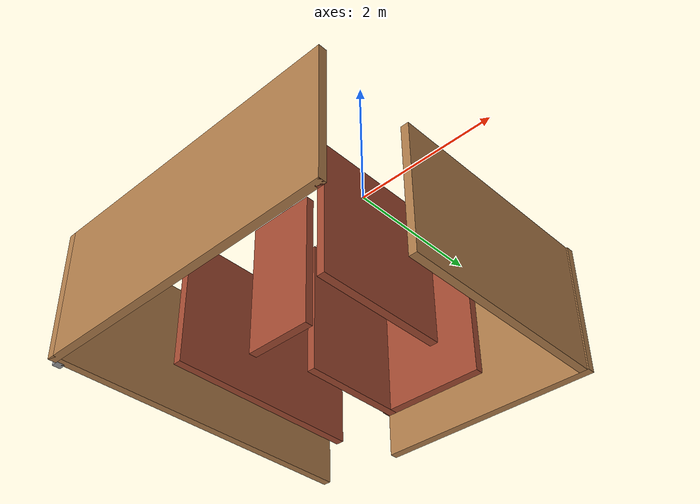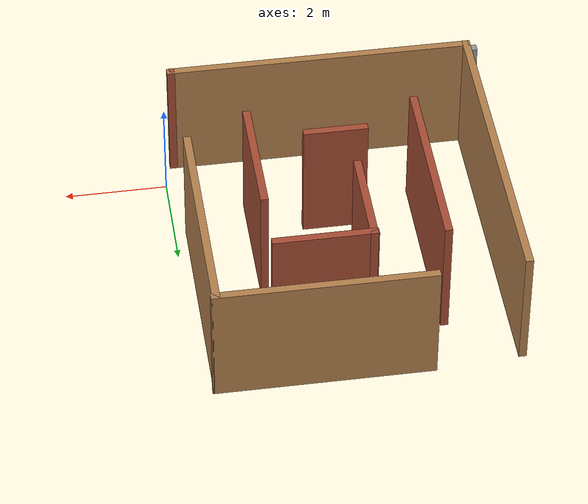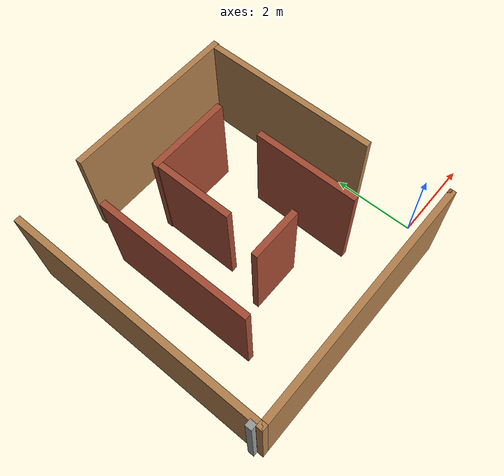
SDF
<?xml version='1.0'?>
<sdf version='1.7'>
  <model name='small_maze'>
    <pose>-3.12289 2.51035 0 0 -0 0</pose>
    <link name='Wall_23'>
      <collision name='Wall_23_Collision'>
        <geometry>
          <box>
            <size>0.15 0.15 2.5</size>
          </box>
        </geometry>
        <pose>0 0 1.25 0 -0 0</pose>
      </collision>
      <visual name='Wall_23_Visual'>
        <pose>0 0 1.25 0 -0 0</pose>
        <geometry>
          <box>
            <size>0.15 0.15 2.5</size>
          </box>
        </geometry>
        <material>
          <script>
            <uri>file://media/materials/scripts/gazebo.material</uri>
            <name>Gazebo/Grey</name>
          </script>
          <ambient>1 1 1 1</ambient>
        </material>
        <meta>
          <layer>0</layer>
        </meta>
      </visual>
      <pose>-3.04789 -2.9604 0 0 -0 0</pose>
    </link>
    <link name='Wall_30'>
      <collision name='Wall_30_Collision'>
        <geometry>
          <box>
            <size>0.15 0.15 2.5</size>
          </box>
        </geometry>
        <pose>0 0 1.25 0 -0 0</pose>
      </collision>
      <visual name='Wall_30_Visual'>
        <pose>0 0 1.25 0 -0 0</pose>
        <geometry>
          <box>
            <size>0.15 0.15 2.5</size>
          </box>
        </geometry>
        <material>
          <script>
            <uri>file://media/materials/scripts/gazebo.material</uri>
            <name>Gazebo/Bricks</name>
          </script>
          <ambient>1 1 1 1</ambient>
        </material>
        <meta>
          <layer>0</layer>
        </meta>
      </visual>
      <pose>2.90661 -3.11322 0 0 -0 0</pose>
    </link>
    <link name='Wall_35'>
      <collision name='Wall_35_Collision'>
        <geometry>
          <box>
            <size>4.37137 0.15 2.5</size>
          </box>
        </geometry>
        <pose>0 0 1.25 0 -0 0</pose>
      </collision>
      <visual name='Wall_35_Visual'>
        <pose>0 0 1.25 0 -0 0</pose>
        <geometry>
          <box>
            <size>4.37137 0.15 2.5</size>
          </box>
        </geometry>
        <material>
          <script>
            <uri>file://media/materials/scripts/gazebo.material</uri>
            <name>Gazebo/Wood</name>
          </script>
          <ambient>1 1 1 1</ambient>
        </material>
        <meta>
          <layer>0</layer>
        </meta>
      </visual>
      <pose>2.82671 0.996626 0 0 -0 -1.57162</pose>
    </link>
    <link name='Wall_38'>
      <collision name='Wall_38_Collision'>
        <geometry>
          <box>
            <size>4.21535 0.15 2.5</size>
          </box>
        </geometry>
        <pose>0 0 1.25 0 -0 0</pose>
      </collision>
      <visual name='Wall_38_Visual'>
        <pose>0 0 1.25 0 -0 0</pose>
        <geometry>
          <box>
            <size>4.21535 0.15 2.5</size>
          </box>
        </geometry>
        <material>
          <script>
            <uri>file://media/materials/scripts/gazebo.material</uri>
            <name>Gazebo/Wood</name>
          </script>
          <ambient>1 1 1 1</ambient>
        </material>
        <meta>
          <layer>0</layer>
        </meta>
      </visual>
      <pose>0.818898 3.11021 0 0 -0 3.14017</pose>
    </link>
    <link name='Wall_41'>
      <collision name='Wall_41_Collision'>
        <geometry>
          <box>
            <size>2 0.15 2.5</size>
          </box>
        </geometry>
        <pose>0 0 1.25 0 -0 0</pose>
      </collision>
      <visual name='Wall_41_Visual'>
        <pose>0 0 1.25 0 -0 0</pose>
        <geometry>
          <box>
            <size>2 0.15 2.5</size>
          </box>
        </geometry>
        <material>
          <script>
            <uri>file://media/materials/scripts/gazebo.material</uri>
            <name>Gazebo/Bricks</name>
          </script>
          <ambient>1 1 1 1</ambient>
        </material>
        <meta>
          <layer>0</layer>
        </meta>
      </visual>
      <pose>0.634797 1.86226 0 0 -0 3.14159</pose>
    </link>
    <link name='Wall_42'>
      <collision name='Wall_42_Collision'>
        <geometry>
          <box>
            <size>2 0.15 2.5</size>
          </box>
        </geometry>
        <pose>0 0 1.25 0 -0 0</pose>
      </collision>
      <visual name='Wall_42_Visual'>
        <pose>0 0 1.25 0 -0 0</pose>
        <geometry>
          <box>
            <size>2 0.15 2.5</size>
          </box>
        </geometry>
        <material>
          <script>
            <uri>file://media/materials/scripts/gazebo.material</uri>
            <name>Gazebo/Bricks</name>
          </script>
          <ambient>1 1 1 1</ambient>
        </material>
        <meta>
          <layer>0</layer>
        </meta>
      </visual>
      <pose>-0.272409 0.937264 0 0 -0 -1.5708</pose>
    </link>
    <link name='Wall_44'>
      <collision name='Wall_44_Collision'>
        <geometry>
          <box>
            <size>3.75 0.15 2.5</size>
          </box>
        </geometry>
        <pose>0 0 1.25 0 -0 0</pose>
      </collision>
      <visual name='Wall_44_Visual'>
        <pose>0 0 1.25 0 -0 0</pose>
        <geometry>
          <box>
            <size>3.75 0.15 2.5</size>
          </box>
        </geometry>
        <material>
          <script>
            <uri>file://media/materials/scripts/gazebo.material</uri>
            <name>Gazebo/Bricks</name>
          </script>
          <ambient>1 1 1 1</ambient>
        </material>
        <meta>
          <layer>0</layer>
        </meta>
      </visual>
      <pose>-1.637 0.172295 0 0 -0 -1.5708</pose>
    </link>
    <link name='Wall_46'>
      <collision name='Wall_46_Collision'>
        <geometry>
          <box>
            <size>2.5 0.15 2.5</size>
          </box>
        </geometry>
        <pose>0 0 1.25 0 -0 0</pose>
      </collision>
      <visual name='Wall_46_Visual'>
        <pose>0 0 1.25 0 -0 0</pose>
        <geometry>
          <box>
            <size>2.5 0.15 2.5</size>
          </box>
        </geometry>
        <material>
          <script>
            <uri>file://media/materials/scripts/gazebo.material</uri>
            <name>Gazebo/Bricks</name>
          </script>
          <ambient>1 1 1 1</ambient>
        </material>
        <meta>
          <layer>0</layer>
        </meta>
      </visual>
      <pose>1.6069 -0.500849 0 0 -0 -1.5708</pose>
    </link>
    <link name='Wall_48'>
      <collision name='Wall_48_Collision'>
        <geometry>
          <box>
            <size>1.25 0.15 2.5</size>
          </box>
        </geometry>
        <pose>0 0 1.25 0 -0 0</pose>
      </collision>
      <visual name='Wall_48_Visual'>
        <pose>0 0 1.25 0 -0 0</pose>
        <geometry>
          <box>
            <size>1.25 0.15 2.5</size>
          </box>
        </geometry>
        <material>
          <script>
            <uri>file://media/materials/scripts/gazebo.material</uri>
            <name>Gazebo/Bricks</name>
          </script>
          <ambient>1 1 1 1</ambient>
        </material>
        <meta>
          <layer>0</layer>
        </meta>
      </visual>
      <pose>-0.00567 -0.994136 0 0 -0 0</pose>
    </link>
    <link name='Wall_50'>
      <collision name='Wall_50_Collision'>
        <geometry>
          <box>
            <size>6 0.15 2.5</size>
          </box>
        </geometry>
        <pose>0 0 1.25 0 -0 0</pose>
      </collision>
      <visual name='Wall_50_Visual'>
        <pose>0 0 1.25 0 -0 0</pose>
        <geometry>
          <box>
            <size>6 0.15 2.5</size>
          </box>
        </geometry>
        <material>
          <script>
            <uri>file://media/materials/scripts/gazebo.material</uri>
            <name>Gazebo/Wood</name>
          </script>
          <ambient>1 1 1 1</ambient>
        </material>
        <meta>
          <layer>0</layer>
        </meta>
      </visual>
      <pose>-0.018385 -3.11322 0 0 -0 3.14159</pose>
    </link>
    <link name='Wall_51'>
      <collision name='Wall_51_Collision'>
        <geometry>
          <box>
            <size>6.25 0.15 2.5</size>
          </box>
        </geometry>
        <pose>0 0 1.25 0 -0 0</pose>
      </collision>
      <visual name='Wall_51_Visual'>
        <pose>0 0 1.25 0 -0 0</pose>
        <geometry>
          <box>
            <size>6.25 0.15 2.5</size>
          </box>
        </geometry>
        <material>
          <script>
            <uri>file://media/materials/scripts/gazebo.material</uri>
            <name>Gazebo/Wood</name>
          </script>
          <ambient>1 1 1 1</ambient>
        </material>
        <meta>
          <layer>0</layer>
        </meta>
      </visual>
      <pose>-2.94339 -0.063222 0 0 -0 1.5708</pose>
    </link>
    <static>1</static>
  </model>
</sdf>
